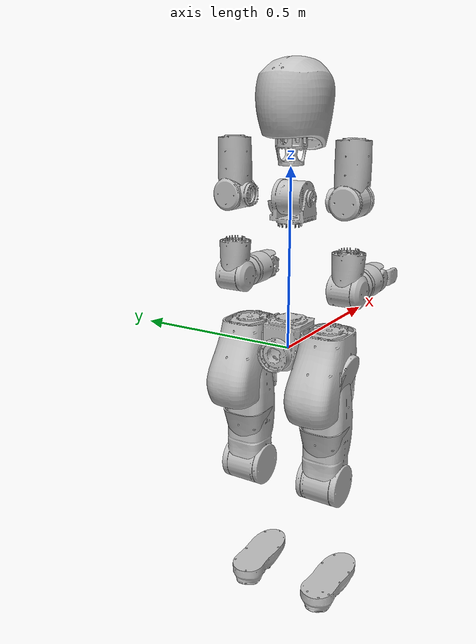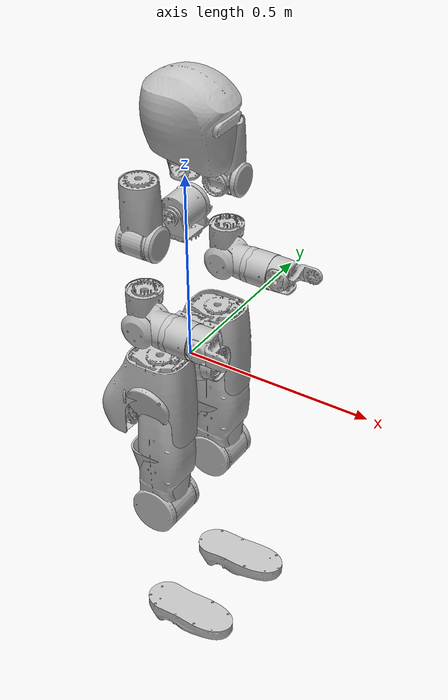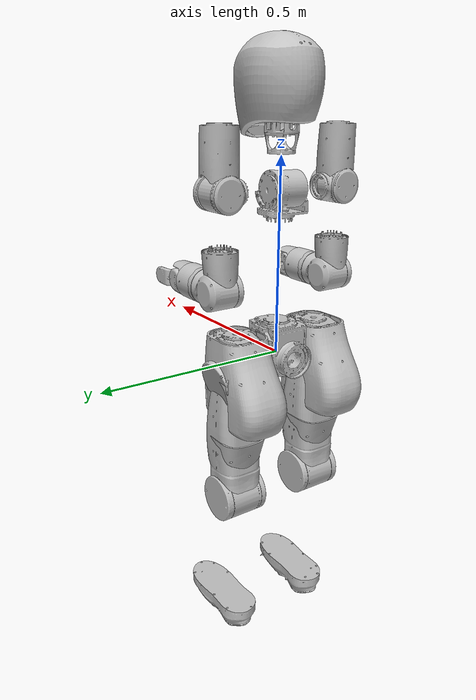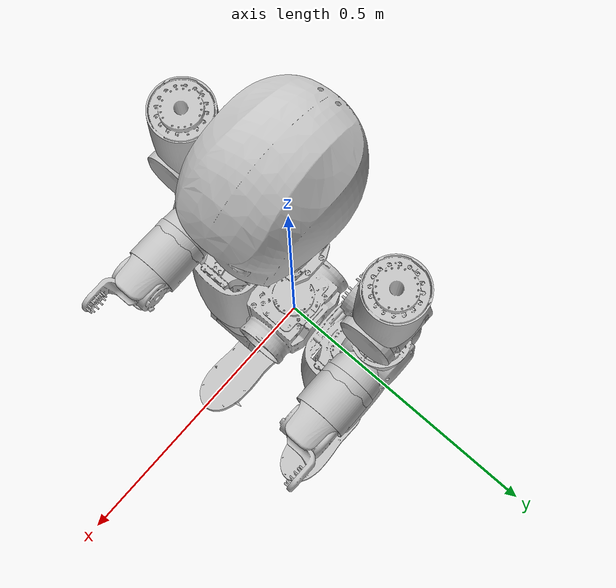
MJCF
<?xml version="1.0"?>
<mujoco model="vr_m3_1">
  <compiler angle="radian" meshdir="assets" />

  <default>
    <default class="vr_m3_1_visual">
      <geom contype="0" conaffinity="0" group="2" density="0"/>
    </default>
    <default class="vr_m3_1_collision">
      <geom group="3" rgba="0.9 0.9 0 1"/>
    </default>
    <site group="5" rgba="1 0 0 1" />
  </default>

  <asset>
    <mesh name="pelvis" content_type="model/stl" file="pelvis.stl"/>
    <mesh name="right_hip_pitch_link" content_type="model/stl" file="right_hip_pitch_link.stl"/>
    <mesh name="right_hip_roll_link" content_type="model/stl" file="right_hip_roll_link.stl"/>
    <mesh name="right_hip_yaw_link" content_type="model/stl" file="right_hip_yaw_link.stl"/>
    <mesh name="right_knee_pitch_link" content_type="model/stl" file="right_knee_pitch_link.stl"/>
    <mesh name="right_ankle_pitch_link" content_type="model/stl" file="right_ankle_pitch_link.stl"/>
    <mesh name="right_ankle_roll_link" content_type="model/stl" file="right_ankle_roll_link.stl"/>
    <mesh name="left_hip_pitch_link" content_type="model/stl" file="left_hip_pitch_link.stl"/>
    <mesh name="left_hip_roll_link" content_type="model/stl" file="left_hip_roll_link.stl"/>
    <mesh name="left_hip_yaw_link" content_type="model/stl" file="left_hip_yaw_link.stl"/>
    <mesh name="left_knee_pitch_link" content_type="model/stl" file="left_knee_pitch_link.stl"/>
    <mesh name="left_ankle_pitch_link" content_type="model/stl" file="left_ankle_pitch_link.stl"/>
    <mesh name="left_ankle_roll_link" content_type="model/stl" file="left_ankle_roll_link.stl"/>
    <mesh name="waist_yaw_link" content_type="model/stl" file="waist_yaw_link.stl"/>
    <mesh name="right_shoulder_pitch_link" content_type="model/stl" file="right_shoulder_pitch_link.stl"/>
    <mesh name="right_shoulder_roll_link" content_type="model/stl" file="right_shoulder_roll_link.stl"/>
    <mesh name="right_shoulder_yaw_link" content_type="model/stl" file="right_shoulder_yaw_link.stl"/>
    <mesh name="right_elbow_pitch_link" content_type="model/stl" file="right_elbow_pitch_link.stl"/>
    <mesh name="right_wrist_yaw_link" content_type="model/stl" file="right_wrist_yaw_link.stl"/>
    <mesh name="right_wrist_roll_link" content_type="model/stl" file="right_wrist_roll_link.stl"/>
    <mesh name="right_wrist_pitch_link" content_type="model/stl" file="right_wrist_pitch_link.stl"/>
    <mesh name="left_shoulder_pitch_link" content_type="model/stl" file="left_shoulder_pitch_link.stl"/>
    <mesh name="left_shoulder_roll_link" content_type="model/stl" file="left_shoulder_roll_link.stl"/>
    <mesh name="left_shoulder_yaw_link" content_type="model/stl" file="left_shoulder_yaw_link.stl"/>
    <mesh name="left_elbow_pitch_link" content_type="model/stl" file="left_elbow_pitch_link.stl"/>
    <mesh name="left_wrist_yaw_link" content_type="model/stl" file="left_wrist_yaw_link.stl"/>
    <mesh name="left_wrist_roll_link" content_type="model/stl" file="left_wrist_roll_link.stl"/>
    <mesh name="left_wrist_pitch_link" content_type="model/stl" file="left_wrist_pitch_link.stl"/>
    <mesh name="head_yaw_link" content_type="model/stl" file="head_yaw_link.stl"/>
    <mesh name="head_pitch_link" content_type="model/stl" file="head_pitch_link.stl"/>
  </asset>

  <worldbody>
    <body name="pelvis">
      <inertial pos="-0.000218 -0.000224 0.011034" quat="-0.999702 0.024399 -0.000151 -0.000107" mass="6.43185" diaginertia="0.036025 0.0260816 0.0229004"/>
      <joint name="base_joint" type="free"/>
      <geom name="pelvis_visual_0" class="vr_m3_1_visual" quat="-0.707107 0 0 0.707107" type="mesh" rgba="0.752941 0.752941 0.752941 1" mesh="pelvis"/>
      <geom name="pelvis_collision_1" class="vr_m3_1_collision" size="0.088 0.026" pos="0 0 0.037303" quat="0 -0.707107 0.707107 0" type="capsule"/>
      <site name="imu" pos="0.00614 0 -0.02485" size="0.01"/>
      <body name="left_hip_pitch_link" pos="0 0.143944 -0.03857">
        <inertial pos="0.009731 -0.019644 -0.052452" quat="-0.044932 -0.075202 0.977972 -0.189462" mass="2.54318" diaginertia="0.00546777 0.00485599 0.00340124"/>
        <joint name="left_hip_pitch_joint" pos="0 0 0" axis="0 0.965926 -0.258819" limited="true" range="-2.617 2.617" actuatorfrclimited="true" actuatorfrcrange="-360 360"/>
        <geom name="left_hip_pitch_link_visual_0" class="vr_m3_1_visual" pos="0 0 0" quat="0.430459 -0.560986 0.560986 0.430459" type="mesh" rgba="0.752941 0.752941 0.752941 1" mesh="left_hip_pitch_link"/>
        <body name="left_hip_roll_link" pos="0 -0.016105 -0.060107">
          <inertial pos="0.003238 -0.0026 -0.039714" quat="0.443153 -0.551013 0.551013 -0.443153" mass="0.415313" diaginertia="0.00116178 0.000851104 0.000724118"/>
          <joint name="left_hip_roll_joint" pos="0 0 0" axis="1 0 0" limited="true" range="-0.785 2.094" actuatorfrclimited="true" actuatorfrcrange="-360 360"/>
          <geom name="left_hip_roll_link_visual_0" class="vr_m3_1_visual" quat="0.5 -0.5 0.5 -0.5" type="mesh" rgba="0.752941 0.752941 0.752941 1" mesh="left_hip_roll_link"/>
          <geom name="left_hip_roll_link_collision_1" class="vr_m3_1_collision" size="0.072 0.00114" pos="0.003725 0.003838 -0.018965" quat="0.707107 0 0 -0.707107" type="capsule"/>
          <body name="left_hip_yaw_link" pos="0 0 -0.293399">
            <inertial pos="0.000887 0.002453 0.070811" quat="0.707094 -0.004233 -0.004233 -0.707094" mass="4.09062" diaginertia="0.033991 0.0338443 0.00407464"/>
            <joint name="left_hip_yaw_joint" pos="0 0 0" axis="0 -0.000001 1" limited="true" range="-2.617 2.617" actuatorfrclimited="true" actuatorfrcrange="-130 130"/>
            <geom name="left_hip_yaw_link_visual_0" class="vr_m3_1_visual" quat="0 0 0 -1" type="mesh" rgba="0.752941 0.752941 0.752941 1" mesh="left_hip_yaw_link"/>
            <geom name="left_hip_yaw_link_collision_1" class="vr_m3_1_collision" size="0.053004 0.039571" pos="-0.000138 0.000975 0.10789" quat="0 0 -1 0" type="capsule"/>
            <body name="left_knee_pitch_link">
              <inertial pos="-0.005799 -0.000097 -0.198823" quat="-0.011698 -0.70701 -0.70701 -0.011698" mass="3.35573" diaginertia="0.0396614 0.0395063 0.00352228"/>
              <joint name="left_knee_pitch_joint" pos="0 0 0" axis="0 1 0.000001" limited="true" range="-0.174 2.356" actuatorfrclimited="true" actuatorfrcrange="-360 360"/>
              <geom name="left_knee_pitch_link_visual_0" class="vr_m3_1_visual" pos="0 0 0" quat="-0.5 0.5 -0.5 -0.5" type="mesh" rgba="0.752941 0.752941 0.752941 1" mesh="left_knee_pitch_link"/>
              <geom name="left_knee_pitch_link_collision_1" class="vr_m3_1_collision" size="0.06053 0.089494" pos="-0.011426 0.0005 -0.265" quat="-0.707107 0 0 -0.707107" type="capsule"/>
              <geom name="left_knee_pitch_link_collision_2" class="vr_m3_1_collision" size="0.055 0.03 0.052" pos="0.038 0 -0.045" quat="-0.5 0.5 -0.5 -0.5" type="box"/>
              <body name="left_ankle_pitch_link" pos="0 0.000001 -0.411">
                <inertial pos="0 0 -0.000068" quat="-0.5 0.5 -0.5 -0.5" mass="0.097508" diaginertia="0.000019 0.000015 0.000012"/>
                <joint name="left_ankle_pitch_joint" pos="0 0 0" axis="0 1 0.000001" limited="true" range="-0.873 0.523" actuatorfrclimited="true" actuatorfrcrange="-120 120"/>
                <geom name="left_ankle_pitch_link_visual_0" class="vr_m3_1_visual" quat="-0.5 0.5 -0.5 -0.5" type="mesh" rgba="0.647059 0.619608 0.588235 1" mesh="left_ankle_pitch_link"/>
                <body name="left_ankle_roll_link">
                  <inertial pos="-0.002511 -0.000018 -0.027456" quat="-0.530167 -0.467892 -0.467892 -0.530167" mass="0.800167" diaginertia="0.00287425 0.00286248 0.000501262"/>
                  <joint name="left_ankle_roll_joint" pos="0 0 0" axis="1 0 0" limited="true" range="-0.262 0.262" actuatorfrclimited="true" actuatorfrcrange="-120 120"/>
                  <geom name="left_ankle_roll_link_visual_0" class="vr_m3_1_visual" quat="-0.707107 0 -0.707107 0" type="mesh" rgba="0.752941 0.752941 0.752941 1" mesh="left_ankle_roll_link"/>
                  <geom name="left_ankle_roll_link_collision_1" class="vr_m3_1_collision" size="0.005 0.02" pos="0.07 0.045 -0.0463" quat="-0.707107 0 -0.707107 0" type="capsule"/>
                  <geom name="left_ankle_roll_link_collision_2" class="vr_m3_1_collision" size="0.005 0.1" pos="0.02 0.035 -0.0463" quat="-0.707107 0 -0.707107 0" type="capsule"/>
                  <geom name="left_ankle_roll_link_collision_3" class="vr_m3_1_collision" size="0.005 0.113" pos="0.02 0.025 -0.0463" quat="-0.707107 0 -0.707107 0" type="capsule"/>
                  <geom name="left_ankle_roll_link_collision_4" class="vr_m3_1_collision" size="0.005 0.121" pos="0.021 0.015 -0.0463" quat="-0.707107 0 -0.707107 0" type="capsule"/>
                  <geom name="left_ankle_roll_link_collision_5" class="vr_m3_1_collision" size="0.005 0.127" pos="0.021 0.005 -0.0463" quat="-0.707107 0 -0.707107 0" type="capsule"/>
                  <geom name="left_ankle_roll_link_collision_6" class="vr_m3_1_collision" size="0.005 0.127" pos="0.021 -0.005 -0.0463" quat="-0.707107 0 -0.707107 0" type="capsule"/>
                  <geom name="left_ankle_roll_link_collision_7" class="vr_m3_1_collision" size="0.005 0.125" pos="0.021 -0.015 -0.0463" quat="-0.707107 0 -0.707107 0" type="capsule"/>
                  <geom name="left_ankle_roll_link_collision_8" class="vr_m3_1_collision" size="0.005 0.118" pos="0.021 -0.025 -0.0463" quat="-0.707107 0 -0.707107 0" type="capsule"/>
                  <geom name="left_ankle_roll_link_collision_9" class="vr_m3_1_collision" size="0.005 0.1" pos="0.019 -0.035 -0.0463" quat="-0.707107 0 -0.707107 0" type="capsule"/>
                  <geom name="left_ankle_roll_link_collision_10" class="vr_m3_1_collision" size="0.005 0.03" pos="0.07 -0.045 -0.0463" quat="-0.707107 0 -0.707107 0" type="capsule"/>
                </body>
              </body>
            </body>
          </body>
        </body>
      </body>
      <body name="right_hip_pitch_link" pos="0 -0.143944 -0.03857">
        <inertial pos="0.009731 0.019644 -0.052452" quat="-0.044932 0.075202 0.977972 0.189462" mass="2.54318" diaginertia="0.00546777 0.00485599 0.00340124"/>
        <joint name="right_hip_pitch_joint" pos="0 0 0" axis="0 0.965926 0.258819" limited="true" range="-2.617 2.617" actuatorfrclimited="true" actuatorfrcrange="-360 360"/>
        <geom name="right_hip_pitch_link_visual_0" class="vr_m3_1_visual" pos="0 0 0" quat="0.560986 -0.430459 0.430459 0.560986" type="mesh" rgba="0.752941 0.752941 0.752941 1" mesh="right_hip_pitch_link"/>
        <body name="right_hip_roll_link" pos="0 0.016105 -0.060107">
          <inertial pos="0.003238 0.0026 -0.039714" quat="-0.443153 0.551013 -0.551013 0.443153" mass="0.415313" diaginertia="0.00116178 0.000851104 0.000724118"/>
          <joint name="right_hip_roll_joint" pos="0 0 0" axis="1 0 0" limited="true" range="-2.094 0.785" actuatorfrclimited="true" actuatorfrcrange="-360 360"/>
          <geom name="right_hip_roll_link_visual_0" class="vr_m3_1_visual" quat="-0.5 0.5 -0.5 0.5" type="mesh" rgba="0.752941 0.752941 0.752941 1" mesh="right_hip_roll_link"/>
          <geom name="right_hip_roll_link_collision_1" class="vr_m3_1_collision" size="0.072 0.00114" pos="0.003725 -0.003838 -0.018965" quat="-0.707107 0 0 0.707107" type="capsule"/>
          <body name="right_hip_yaw_link" pos="0 0 -0.293399">
            <inertial pos="0.000887 -0.002453 0.070811" quat="-0.707094 -0.004233 -0.004233 0.707094" mass="4.09062" diaginertia="0.033991 0.0338443 0.00407464"/>
            <joint name="right_hip_yaw_joint" pos="0 0 0" axis="0 0.000001 1" limited="true" range="-2.617 2.617" actuatorfrclimited="true" actuatorfrcrange="-130 130"/>
            <geom name="right_hip_yaw_link_visual_0" class="vr_m3_1_visual" quat="0 0 0 1" type="mesh" rgba="0.752941 0.752941 0.752941 1" mesh="right_hip_yaw_link"/>
            <geom name="right_hip_yaw_link_collision_1" class="vr_m3_1_collision" size="0.053004 0.039571" pos="-0.000138 0.000975 0.10789" quat="0 0 1 0" type="capsule"/>
            <body name="right_knee_pitch_link">
              <inertial pos="-0.005799 0.000097 -0.198823" quat="0.011698 0.70701 0.70701 0.011698" mass="3.35573" diaginertia="0.0396614 0.0395063 0.00352228"/>
              <joint name="right_knee_pitch_joint" pos="0 0 0" axis="0 1 -0.000001" limited="true" range="-0.174 2.356" actuatorfrclimited="true" actuatorfrcrange="-360 360"/>
              <geom name="right_knee_pitch_link_visual_0" class="vr_m3_1_visual" pos="0 0 0" quat="0.5 -0.5 0.5 0.5" type="mesh" rgba="0.752941 0.752941 0.752941 1" mesh="right_knee_pitch_link"/>
              <geom name="right_knee_pitch_link_collision_1" class="vr_m3_1_collision" size="0.06053 0.089494" pos="-0.011426 0.0005 -0.265" quat="0.707107 0 0 0.707107" type="capsule"/>
              <geom name="right_knee_pitch_link_collision_2" class="vr_m3_1_collision" size="0.055 0.03 0.052" pos="0.038 0 -0.045" quat="0.5 -0.5 0.5 0.5" type="box"/>
              <body name="right_ankle_pitch_link" pos="0 -0.000001 -0.411">
                <inertial pos="0 0 -0.000068" quat="0.5 -0.5 0.5 0.5" mass="0.097508" diaginertia="0.000019 0.000015 0.000012"/>
                <joint name="right_ankle_pitch_joint" pos="0 0 0" axis="0 1 -0.000001" limited="true" range="-0.873 0.523" actuatorfrclimited="true" actuatorfrcrange="-120 120"/>
                <geom name="right_ankle_pitch_link_visual_0" class="vr_m3_1_visual" quat="0.5 -0.5 0.5 0.5" type="mesh" rgba="0.647059 0.619608 0.588235 1" mesh="right_ankle_pitch_link"/>
                <body name="right_ankle_roll_link">
                  <inertial pos="-0.002511 0.000018 -0.027456" quat="0.530167 0.467892 0.467892 0.530167" mass="0.800167" diaginertia="0.00287425 0.00286248 0.000501262"/>
                  <joint name="right_ankle_roll_joint" pos="0 0 0" axis="1 0 0" limited="true" range="-0.262 0.262" actuatorfrclimited="true" actuatorfrcrange="-120 120"/>
                  <geom name="right_ankle_roll_link_visual_0" class="vr_m3_1_visual" quat="0.707107 0 0.707107 0" type="mesh" rgba="0.752941 0.752941 0.752941 1" mesh="right_ankle_roll_link"/>
                  <geom name="right_ankle_roll_link_collision_1" class="vr_m3_1_collision" size="0.005 0.02" pos="0.07 -0.045 -0.0463" quat="0.707107 0 0.707107 0" type="capsule"/>
                  <geom name="right_ankle_roll_link_collision_2" class="vr_m3_1_collision" size="0.005 0.1" pos="0.02 -0.035 -0.0463" quat="0.707107 0 0.707107 0" type="capsule"/>
                  <geom name="right_ankle_roll_link_collision_3" class="vr_m3_1_collision" size="0.005 0.113" pos="0.02 -0.025 -0.0463" quat="0.707107 0 0.707107 0" type="capsule"/>
                  <geom name="right_ankle_roll_link_collision_4" class="vr_m3_1_collision" size="0.005 0.121" pos="0.021 -0.015 -0.0463" quat="0.707107 0 0.707107 0" type="capsule"/>
                  <geom name="right_ankle_roll_link_collision_5" class="vr_m3_1_collision" size="0.005 0.127" pos="0.021 -0.005 -0.0463" quat="0.707107 0 0.707107 0" type="capsule"/>
                  <geom name="right_ankle_roll_link_collision_6" class="vr_m3_1_collision" size="0.005 0.127" pos="0.021 0.005 -0.0463" quat="0.707107 0 0.707107 0" type="capsule"/>
                  <geom name="right_ankle_roll_link_collision_7" class="vr_m3_1_collision" size="0.005 0.125" pos="0.021 0.015 -0.0463" quat="0.707107 0 0.707107 0" type="capsule"/>
                  <geom name="right_ankle_roll_link_collision_8" class="vr_m3_1_collision" size="0.005 0.118" pos="0.021 0.025 -0.0463" quat="0.707107 0 0.707107 0" type="capsule"/>
                  <geom name="right_ankle_roll_link_collision_9" class="vr_m3_1_collision" size="0.005 0.1" pos="0.019 0.035 -0.0463" quat="0.707107 0 0.707107 0" type="capsule"/>
                  <geom name="right_ankle_roll_link_collision_10" class="vr_m3_1_collision" size="0.005 0.03" pos="0.07 0.045 -0.0463" quat="0.707107 0 0.707107 0" type="capsule"/>
                </body>
              </body>
            </body>
          </body>
        </body>
      </body>
      <body name="waist_yaw_link" pos="0 0 0.420134">
        <inertial pos="-0.014262 -0.00057 -0.111953" quat="-0.004482 -0.047051 -0.013466 0.998792" mass="16.9444" diaginertia="0.291317 0.227092 0.15517"/>
        <joint name="waist_yaw_joint" pos="0 0 0" axis="0 0 1" limited="true" range="-3.14 3.14" actuatorfrclimited="true" actuatorfrcrange="-102 102"/>
        <geom name="waist_yaw_link_visual_0" class="vr_m3_1_visual" quat="0 0 0 1" type="mesh" rgba="0.752941 0.752941 0.752941 1" mesh="waist_yaw_link"/>
        <geom name="waist_yaw_link_collision_1" class="vr_m3_1_collision" size="0.119734 0.057854" pos="0 0 -0.079105" quat="0 0 0 1" type="capsule"/>
        <body name="left_shoulder_pitch_link" pos="0 0.175 0">
          <inertial pos="-0.003686 -0.002234 0.000048" quat="0.666083 -0.262223 0.654044 0.244536" mass="1.69784" diaginertia="0.00144111 0.00132242 0.00131247"/>
          <joint name="left_shoulder_pitch_joint" pos="0 0 0" axis="0 1 0" limited="true" range="-3.14 1.57" actuatorfrclimited="true" actuatorfrcrange="-66 66"/>
          <geom name="left_shoulder_pitch_link_visual_0" class="vr_m3_1_visual" quat="0.5 -0.5 0.5 0.5" type="mesh" rgba="0.752941 0.752941 0.752941 1" mesh="left_shoulder_pitch_link"/>
          <body name="left_shoulder_roll_link">
            <inertial pos="-0.001956 0.000016 -0.094554" quat="0.704755 -0.057628 0.057628 -0.704755" mass="0.711117" diaginertia="0.001434 0.00132273 0.000499266"/>
            <joint name="left_shoulder_roll_joint" pos="0 0 0" axis="1 0 0" limited="true" range="0 2.356" actuatorfrclimited="true" actuatorfrcrange="-66 66"/>
            <geom name="left_shoulder_roll_link_visual_0" class="vr_m3_1_visual" quat="0.5 -0.5 0.5 -0.5" type="mesh" rgba="0.752941 0.752941 0.752941 1" mesh="left_shoulder_roll_link"/>
            <geom name="left_shoulder_roll_link_collision_1" class="vr_m3_1_collision" size="0.047 0.041674" pos="-0.0025 0.000007 -0.044019" quat="0.707107 0 0 -0.707107" type="capsule"/>
            <body name="left_shoulder_yaw_link" pos="0 0 -0.23">
              <inertial pos="-0.00202 0.010279 0.054483" quat="0.68906 -0.158734 -0.158734 -0.68906" mass="0.178642" diaginertia="0.000240218 0.000238132 0.0000876502"/>
              <joint name="left_shoulder_yaw_joint" pos="0 0 0" axis="0 0 1" limited="true" range="-2.79 2.79" actuatorfrclimited="true" actuatorfrcrange="-34 34"/>
              <geom name="left_shoulder_yaw_link_visual_0" class="vr_m3_1_visual" quat="0 0 0 -1" type="mesh" rgba="0.752941 0.752941 0.752941 1" mesh="left_shoulder_yaw_link"/>
              <geom name="left_shoulder_yaw_link_collision_1" class="vr_m3_1_collision" size="0.0333 0.00815" pos="-0.01 0 0.064" quat="0 0 -0.707107 -0.707107" type="capsule"/>
              <body name="left_elbow_pitch_link">
                <inertial pos="0.005432 -0.000905 0.000096" quat="0.712544 -0.051437 -0.699398 -0.021883" mass="0.623076" diaginertia="0.000470082 0.000441891 0.000355027"/>
                <joint name="left_elbow_pitch_joint" pos="0 0 0" axis="0 1 0" limited="true" range="-0.524 1.571" actuatorfrclimited="true" actuatorfrcrange="-34 34"/>
                <geom name="left_elbow_pitch_link_visual_0" class="vr_m3_1_visual" quat="0.5 -0.5 -0.5 -0.5" type="mesh" rgba="0.752941 0.752941 0.752941 1" mesh="left_elbow_pitch_link"/>
                <geom name="left_elbow_pitch_link_collision_1" class="vr_m3_1_collision" size="0.030637 0.010363" pos="0.01 -0.008363 -0.015162" quat="0.708809 0.001702 -0.705397 -0.00171" type="capsule"/>
                <body name="left_wrist_yaw_link" pos="0.172 0 0">
                  <inertial pos="-0.078084 -0.000027 0.003505" quat="0.56548 -0.424538 -0.424538 0.56548" mass="0.617133" diaginertia="0.000783 0.000720652 0.000224348"/>
                  <joint name="left_wrist_yaw_joint" pos="0 0 0" axis="-1 0 0" limited="true" range="-2.79 2.79" actuatorfrclimited="true" actuatorfrcrange="-11 11"/>
                  <geom name="left_wrist_yaw_link_visual_0" class="vr_m3_1_visual" quat="0.5 -0.5 -0.5 0.5" type="mesh" rgba="0.752941 0.752941 0.752941 1" mesh="left_wrist_yaw_link"/>
                  <geom name="left_wrist_yaw_link_collision_1" class="vr_m3_1_collision" size="0.036526 0.038452" pos="-0.048732 -0.0001 0.001764" quat="0.5 0.5 0.5 0.5" type="capsule"/>
                  <body name="left_wrist_roll_link">
                    <inertial pos="0.006191 0.007362 0.00506" quat="-0.027734 0.541649 -0.449548 0.709756" mass="0.568929" diaginertia="0.000374851 0.000323713 0.000137436"/>
                    <joint name="left_wrist_roll_joint" pos="0 0 0" axis="0 0 1" limited="true" range="-1.571 1.571" actuatorfrclimited="true" actuatorfrcrange="-11 11"/>
                    <geom name="left_wrist_roll_link_visual_0" class="vr_m3_1_visual" type="mesh" rgba="0.752941 0.752941 0.752941 1" mesh="left_wrist_roll_link"/>
                    <geom name="left_wrist_roll_link_collision_1" class="vr_m3_1_collision" size="0.028375 0.014756" pos="0.065017 0.000052 -0.00025" quat="0.707107 -0.707107 -0.000647 0" type="capsule"/>
                    <body name="left_wrist_pitch_link" pos="0.058 0 0">
                      <inertial pos="0.001735 0.008087 0.000151" quat="0.69352 -0.13795 0.69352 0.13795" mass="0.488406" diaginertia="0.000123 0.000120485 0.000103515"/>
                      <joint name="left_wrist_pitch_joint" pos="0 0 0" axis="0 1 0" limited="true" range="-1.571 1.571" actuatorfrclimited="true" actuatorfrcrange="-11 11"/>
                      <geom name="left_wrist_pitch_link_visual_0" class="vr_m3_1_visual" quat="0.707107 -0.707107 0 0" type="mesh" rgba="0.752941 0.752941 0.752941 1" mesh="left_wrist_pitch_link"/>
                    </body>
                  </body>
                </body>
              </body>
            </body>
          </body>
        </body>
        <body name="right_shoulder_pitch_link" pos="0 -0.175 0">
          <inertial pos="-0.003686 0.002234 0.000048" quat="0.666083 0.262223 0.654044 -0.244536" mass="1.69784" diaginertia="0.00144111 0.00132242 0.00131247"/>
          <joint name="right_shoulder_pitch_joint" pos="0 0 0" axis="0 1 0" limited="true" range="-3.14 1.57" actuatorfrclimited="true" actuatorfrcrange="-66 66"/>
          <geom name="right_shoulder_pitch_link_visual_0" class="vr_m3_1_visual" quat="0.5 -0.5 0.5 0.5" type="mesh" rgba="0.752941 0.752941 0.752941 1" mesh="right_shoulder_pitch_link"/>
          <body name="right_shoulder_roll_link">
            <inertial pos="-0.001956 -0.000016 -0.094554" quat="0.704755 -0.057628 0.057628 -0.704755" mass="0.711117" diaginertia="0.001434 0.00132273 0.000499266"/>
            <joint name="right_shoulder_roll_joint" pos="0 0 0" axis="1 0 0" limited="true" range="-2.356 0" actuatorfrclimited="true" actuatorfrcrange="-66 66"/>
            <geom name="right_shoulder_roll_link_visual_0" class="vr_m3_1_visual" quat="0.5 -0.5 0.5 -0.5" type="mesh" rgba="0.752941 0.752941 0.752941 1" mesh="right_shoulder_roll_link"/>
            <geom name="right_shoulder_roll_link_collision_1" class="vr_m3_1_collision" size="0.047 0.041674" pos="-0.0025 0.000007 -0.044019" quat="0.707107 0 0 -0.707107" type="capsule"/>
            <body name="right_shoulder_yaw_link" pos="0 0 -0.23">
              <inertial pos="-0.00202 -0.010279 0.054483" quat="0.68906 0.158734 0.158734 -0.68906" mass="0.178642" diaginertia="0.000240218 0.000238132 0.0000876502"/>
              <joint name="right_shoulder_yaw_joint" pos="0 0 0" axis="0 0 1" limited="true" range="-2.79 2.79" actuatorfrclimited="true" actuatorfrcrange="-34 34"/>
              <geom name="right_shoulder_yaw_link_visual_0" class="vr_m3_1_visual" quat="0 0 0 -1" type="mesh" rgba="0.752941 0.752941 0.752941 1" mesh="right_shoulder_yaw_link"/>
              <geom name="right_shoulder_yaw_link_collision_1" class="vr_m3_1_collision" size="0.0333 0.00815" pos="-0.01 0 0.064" quat="0 0 -0.707107 -0.707107" type="capsule"/>
              <body name="right_elbow_pitch_link">
                <inertial pos="0.005432 0.000905 0.000096" quat="0.712544 0.051437 -0.699398 0.021883" mass="0.623076" diaginertia="0.000470082 0.000441891 0.000355027"/>
                <joint name="right_elbow_pitch_joint" pos="0 0 0" axis="0 1 0" limited="true" range="-0.524 1.571" actuatorfrclimited="true" actuatorfrcrange="-34 34"/>
                <geom name="right_elbow_pitch_link_visual_0" class="vr_m3_1_visual" quat="0.5 -0.5 -0.5 -0.5" type="mesh" rgba="0.752941 0.752941 0.752941 1" mesh="right_elbow_pitch_link"/>
                <geom name="right_elbow_pitch_link_collision_1" class="vr_m3_1_collision" size="0.030637 0.010363" pos="0.01 -0.008363 -0.015162" quat="0.708809 0.001702 -0.705397 -0.00171" type="capsule"/>
                <body name="right_wrist_yaw_link" pos="0.172 0 0">
                  <inertial pos="-0.078084 0.000027 0.003505" quat="0.56548 -0.424538 -0.424538 0.56548" mass="0.617133" diaginertia="0.000783 0.000720652 0.000224348"/>
                  <joint name="right_wrist_yaw_joint" pos="0 0 0" axis="-1 0 0" limited="true" range="-2.79 2.79" actuatorfrclimited="true" actuatorfrcrange="-11 11"/>
                  <geom name="right_wrist_yaw_link_visual_0" class="vr_m3_1_visual" quat="0.5 -0.5 -0.5 0.5" type="mesh" rgba="0.752941 0.752941 0.752941 1" mesh="right_wrist_yaw_link"/>
                  <geom name="right_wrist_yaw_link_collision_1" class="vr_m3_1_collision" size="0.036526 0.038452" pos="-0.048732 -0.0001 0.001764" quat="0.5 0.5 0.5 0.5" type="capsule"/>
                  <body name="right_wrist_roll_link">
                    <inertial pos="0.006191 -0.007362 0.00506" quat="0.027734 0.541649 0.449548 0.709756" mass="0.568929" diaginertia="0.000374851 0.000323713 0.000137436"/>
                    <joint name="right_wrist_roll_joint" pos="0 0 0" axis="0 0 1" limited="true" range="-1.571 1.571" actuatorfrclimited="true" actuatorfrcrange="-11 11"/>
                    <geom name="right_wrist_roll_link_visual_0" class="vr_m3_1_visual" type="mesh" rgba="0.752941 0.752941 0.752941 1" mesh="right_wrist_roll_link"/>
                    <geom name="right_wrist_roll_link_collision_1" class="vr_m3_1_collision" size="0.028375 0.014756" pos="0.065017 0.000052 -0.00025" quat="0.707107 -0.707107 -0.000647 0" type="capsule"/>
                    <body name="right_wrist_pitch_link" pos="0.058 0 0">
                      <inertial pos="0.001735 -0.008087 0.000151" quat="0.69352 0.13795 0.69352 -0.13795" mass="0.488406" diaginertia="0.000123 0.000120485 0.000103515"/>
                      <joint name="right_wrist_pitch_joint" pos="0 0 0" axis="0 1 0" limited="true" range="-1.571 1.571" actuatorfrclimited="true" actuatorfrcrange="-11 11"/>
                      <geom name="right_wrist_pitch_link_visual_0" class="vr_m3_1_visual" quat="0.707107 -0.707107 0 0" type="mesh" rgba="0.752941 0.752941 0.752941 1" mesh="right_wrist_pitch_link"/>
                    </body>
                  </body>
                </body>
              </body>
            </body>
          </body>
        </body>
        <body name="head_yaw_link" pos="0 -0.000001 0.218181">
          <inertial pos="-0.000376 0.00322 -0.060039" quat="-0.056881 -0.007543 -0.078405 0.995269" mass="1.08127" diaginertia="0.00201431 0.00199457 0.000743125"/>
          <geom name="head_yaw_link_visual_0" class="vr_m3_1_visual" quat="0 0 0 1" type="mesh" rgba="0.752941 0.752941 0.752941 1" mesh="head_yaw_link"/>
          <body name="head_pitch_link">
            <inertial pos="0.050533 -0.000653 0.00896" quat="-0.552589 0.446931 0.468172 -0.525084" mass="0.502756" diaginertia="0.00149931 0.00137191 0.00105978"/>
            <geom name="head_pitch_link_visual_0" class="vr_m3_1_visual" pos="0 0 0" quat="0 0 0.707107 0.707107" type="mesh" rgba="0.752941 0.752941 0.752941 1" mesh="head_pitch_link"/>
            <geom name="head_pitch_link_collision_1" class="vr_m3_1_collision" size="0.10661 0.00366" pos="0.017388 0 0" quat="-0.707107 0 0 -0.707107" type="capsule"/>
          </body>
        </body>
      </body>
    </body>
  </worldbody>
  <sensor>
    <gyro name="imu_ang_vel" site="imu" />
    <velocimeter name="imu_lin_vel" site="imu" />
    <accelerometer name="imu_lin_acc" site="imu" />
    <subtreeangmom name="root_angmom" body="pelvis" />
  </sensor>
</mujoco>
